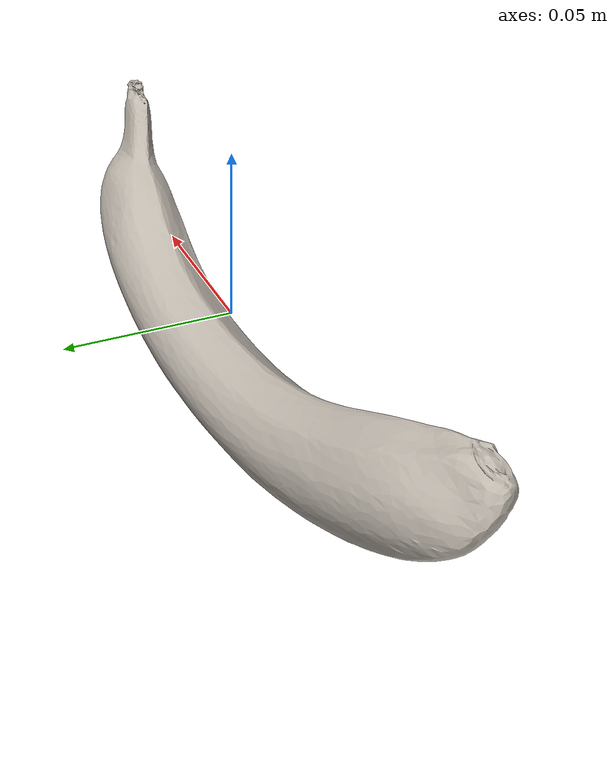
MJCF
<mujoco model="banana_cda9d898">
  <compiler angle="radian"/>
  <asset>
    <texture type="2d" name="banana_cda9d898_tex" file="banana_cda9d898_visual_0.png"/>
    <material name="banana_cda9d898_mat" texture="banana_cda9d898_tex"/>
    <mesh name="banana_cda9d898_visual" content_type="model/obj" file="banana_cda9d898_visual.obj" scale="-2.31591 1.30268 1"/>
    <mesh name="banana_cda9d898_c0" content_type="model/obj" file="banana_cda9d898_c0.obj" scale="-2.31591 1.30268 1"/>
    <mesh name="banana_cda9d898_c1" content_type="model/obj" file="banana_cda9d898_c1.obj" scale="-2.31591 1.30268 1"/>
    <mesh name="banana_cda9d898_c2" content_type="model/obj" file="banana_cda9d898_c2.obj" scale="-2.31591 1.30268 1"/>
    <mesh name="banana_cda9d898_c3" content_type="model/obj" file="banana_cda9d898_c3.obj" scale="-2.31591 1.30268 1"/>
  </asset>
  <worldbody>
    <body name="banana_cda9d898">
      <freejoint/>
      <geom name="banana_cda9d898_visual" type="mesh" mesh="banana_cda9d898_visual" mass="1e-8" contype="0" conaffinity="0" group="2" material="banana_cda9d898_mat"/>
      <geom name="banana_cda9d898_c0" type="mesh" mesh="banana_cda9d898_c0" group="3" density="967.712" friction="0.9 0.05 0.005" condim="4" rgba="0.4 0.5 0.9 0.35"/>
      <geom name="banana_cda9d898_c1" type="mesh" mesh="banana_cda9d898_c1" group="3" density="967.712" friction="0.9 0.05 0.005" condim="4" rgba="0.4 0.5 0.9 0.35"/>
      <geom name="banana_cda9d898_c2" type="mesh" mesh="banana_cda9d898_c2" group="3" density="967.712" friction="0.9 0.05 0.005" condim="4" rgba="0.4 0.5 0.9 0.35"/>
      <geom name="banana_cda9d898_c3" type="mesh" mesh="banana_cda9d898_c3" group="3" density="967.712" friction="0.9 0.05 0.005" condim="4" rgba="0.4 0.5 0.9 0.35"/>
    </body>
  </worldbody>
</mujoco>
